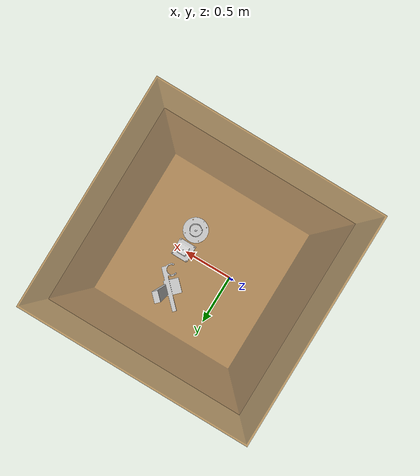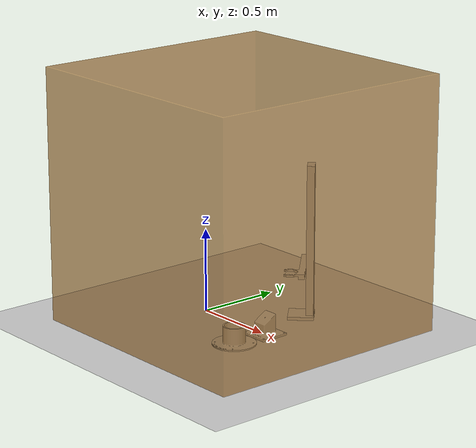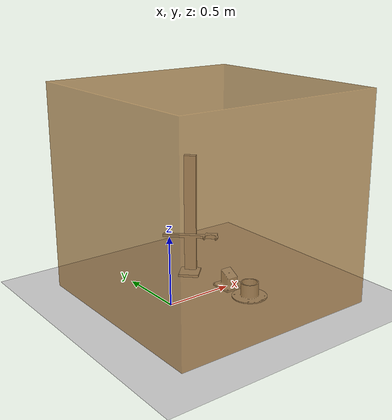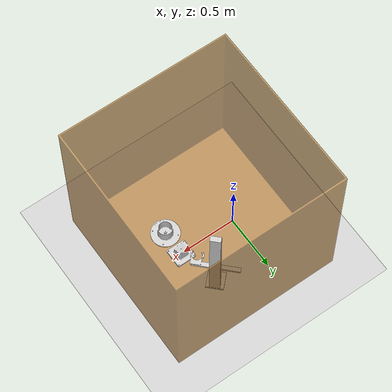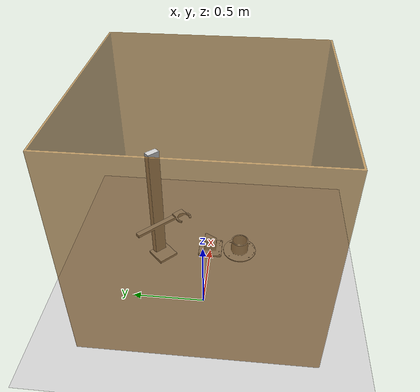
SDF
<sdf version="1.4">
 <world name="Workspace">
  <include><uri>model://ground_plane</uri></include>
  <include><uri>model://sun</uri></include>
  <model name="robotbox">
   <static>true</static>
   <link name="box">
    <visual name="visual">
     <geometry><mesh><uri>file://meshes/robotbox.stl</uri></mesh></geometry>
     <transparency>0.33</transparency>
     <material><ambient>0.7 0.47 0.18 1</ambient></material>
    </visual>
    <collision name="collision">
     <geometry><mesh><uri>file://meshes/robotbox.stl</uri></mesh></geometry>
    </collision>
   </link>
   <joint name="world_robotbox" type="revolute">
    <parent>world</parent>
    <child>box</child>
    <axis><xyz>0 0 1</xyz></axis>
   </joint>
  </model>
  <model name="tool_stand">
   <pose>0.45 .381 -0.0 0 0 -0.7854</pose>
   <static>true</static>
   <link name="stand">
    <visual name="visual">
     <geometry><mesh><uri>file://meshes/stand_simple.stl</uri></mesh></geometry>
     <material><ambient>0.8 0.8 0.8 1</ambient></material>
    </visual>
    <collision name="collision">
     <geometry><mesh><uri>file://meshes/stand_simple.stl</uri></mesh></geometry>
    </collision>
   </link>
   <joint name="world_tool_stand" type="revolute">
    <parent>world</parent>
    <child>stand</child>
    <axis><xyz>0 0 1</xyz></axis>
   </joint>
  </model>
  <model name="pin_tool_storage">
   <pose>0.525 -.2286 -0.0 3.1416 0 0</pose>
   <static>true</static>
   <link name="storage">
    <visual name="visual">
     <geometry><mesh><uri>file://meshes/pin_tool_fixture.stl</uri></mesh></geometry>
     <material><ambient>0.8 0.8 0.8 1</ambient></material>
    </visual>
    <collision name="collision">
     <geometry><mesh><uri>file://meshes/pin_tool_fixture.stl</uri></mesh></geometry>
    </collision>
   </link>
   <joint name="world_storage" type="revolute">
    <parent>world</parent>
    <child>storage</child>
    <axis><xyz>0 0 1</xyz></axis>
   </joint>
  </model>
  <model name="pin_target">
   <pose>0.525 0 -0.0 1.571 -1.571 0</pose>
   <static>true</static>
   <link name="target">
    <visual name="visual">
     <geometry><mesh><uri>file://meshes/pin_test_target.stl</uri></mesh></geometry>
     <material><ambient>0.8 0.8 0.8 1</ambient></material>
    </visual>
    <collision name="collision">
     <geometry><mesh><uri>file://meshes/pin_test_target.stl</uri></mesh></geometry>
    </collision>
   </link>
   <joint name="world_target" type="revolute">
    <parent>world</parent>
    <child>target</child>
    <axis><xyz>0 0 1</xyz></axis>
   </joint>
  </model>
 </world>
</sdf>
